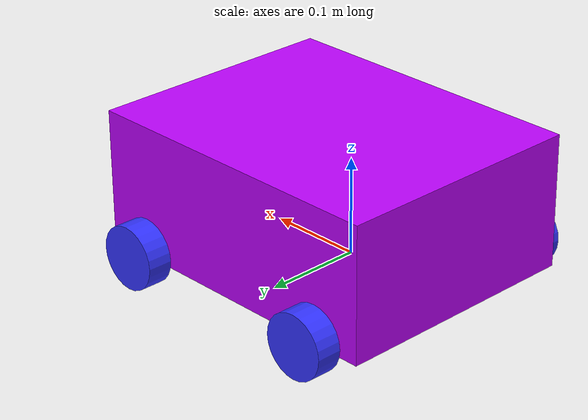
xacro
<?xml version="1.0"?>
<robot xmlns:xacro="http://www.ros.org/wiki/xacro" >

    <xacro:include filename="inertial_macros.xacro"/>

    <xacro:arg name="robot_name" default=""/>
    <xacro:property name="robot_name" value="$(arg robot_name)"/>

    <xacro:property name="chassis_length" value="0.335"/>
    <xacro:property name="chassis_width" value="0.265"/>
    <xacro:property name="chassis_height" value="0.138"/>
    <xacro:property name="chassis_mass" value="1.0"/>
    <xacro:property name="wheel_radius" value="0.033"/>
    <xacro:property name="wheel_thickness" value="0.026"/>
    <xacro:property name="wheel_mass" value="0.05"/>
    <xacro:property name="wheel_offset_x_front" value="0.14"/>
    <xacro:property name="wheel_offset_x_rear" value="-0.09"/>
    <xacro:property name="wheel_offset_y" value="0.1485"/>
    <xacro:property name="wheel_offset_z" value="0.01"/>

    <material name="white">
        <color rgba="1 1 1 1" />
    </material>

    <material name="violet">
        <color rgba="0.745 0.0117 0.9921 1"/>
    </material>

    <material name="blue">
        <color rgba="0.2 0.2 1 1"/>
    </material>

    <material name="black">
        <color rgba="0 0 0 1"/>
    </material>

    <material name="red">
        <color rgba="1 0 0 1"/>
    </material>

    <material name="green">
        <color rgba="0.18 0.8 0.25 1"/>
    </material>

    <material name="orange">
        <color rgba="1.0 0.55 0.0 1"/>
    </material>

    <!-- BASE LINK -->

    <link name="base_link"></link>

    <!-- BASE_FOOTPRINT LINK -->

    <joint name="base_footprint_joint" type="fixed">
        <parent link="base_link"/>
        <child link="base_footprint"/>
        <origin xyz="0 0 0" rpy="0 0 0"/>
    </joint>

    <link name="base_footprint"></link>

    <!-- CHASSIS LINK -->

    <joint name="chassis_joint" type="fixed">
        <parent link="base_link"/>
        <child link="chassis"/>
        <origin xyz="${-wheel_offset_x_front} 0 ${-wheel_offset_z}"/>
    </joint>

    <link name="chassis">
        <visual>
            <origin xyz="${chassis_length/2} 0 ${chassis_height/2}"/>
            <geometry>
                <box size="${chassis_length} ${chassis_width} ${chassis_height}"/>
            </geometry>
            <xacro:if value="${robot_name == 'robot2'}">
                <material name="green"/>
            </xacro:if>
            <xacro:unless value="${robot_name == 'robot2'}">
                <material name="violet"/>
            </xacro:unless>
        </visual>
        <collision>
            <origin xyz="${chassis_length/2} 0 ${chassis_height/2}"/>
            <geometry>
                <box size="${chassis_length} ${chassis_width} ${chassis_height}"/>
            </geometry>
        </collision>
        <xacro:inertial_box mass="0.5" x="${chassis_length}" y="${chassis_width}" z="${chassis_height}">
            <origin xyz="${chassis_length/2} 0 ${chassis_height/2}" rpy="0 0 0"/>
        </xacro:inertial_box>
    </link>

    <gazebo reference="chassis">
        <xacro:if value="${robot_name == 'robot2'}">
            <material>Gazebo/Green</material>
        </xacro:if>
        <xacro:unless value="${robot_name == 'robot2'}">
            <material>Gazebo/Violet</material>
        </xacro:unless>
    </gazebo>

    <!-- FRONT LEFT WHEEL LINK -->

    <joint name="left_wheel_joint" type="continuous">
        <parent link="base_link"/>
        <child link="left_wheel"/>
        <origin xyz="${wheel_offset_x_front} ${wheel_offset_y} 0" rpy="-${pi/2} 0 0" />
        <axis xyz="0 0 1"/>
    </joint>

    <link name="left_wheel">
        <visual>
            <geometry>
                <cylinder radius="${wheel_radius}" length="${wheel_thickness}"/>
            </geometry>
            <material name="blue"/>
        </visual>
        <collision>
            <geometry>
                <sphere radius="${wheel_radius}"/>
            </geometry>
        </collision>
        <xacro:inertial_cylinder mass="${wheel_mass}" length="${wheel_thickness}" radius="${wheel_radius}">
            <origin xyz="0 0 0" rpy="0 0 0"/>
        </xacro:inertial_cylinder>
    </link>

    <gazebo reference="left_wheel">
        <xacro:if value="${robot_name == 'robot2'}">
            <material>Gazebo/Orange</material>
        </xacro:if>
        <xacro:unless value="${robot_name == 'robot2'}">
            <material>Gazebo/Blue</material>
        </xacro:unless>
    </gazebo>

    <!-- FRONT RIGHT WHEEL LINK -->

    <joint name="right_wheel_joint" type="continuous">
        <parent link="base_link"/>
        <child link="right_wheel"/>
        <origin xyz="${wheel_offset_x_front} ${-wheel_offset_y} 0" rpy="${pi/2} 0 0" />
        <axis xyz="0 0 -1"/>
    </joint>

    <link name="right_wheel">
        <visual>
            <geometry>
                <cylinder radius="${wheel_radius}" length="${wheel_thickness}"/>
            </geometry>
            <material name="blue"/>
        </visual>
        <collision>
            <geometry>
                <sphere radius="${wheel_radius}"/>
            </geometry>
        </collision>
        <xacro:inertial_cylinder mass="${wheel_mass}" length="${wheel_thickness}" radius="${wheel_radius}">
            <origin xyz="0 0 0" rpy="0 0 0"/>
        </xacro:inertial_cylinder>
    </link>

    <gazebo reference="right_wheel">
        <xacro:if value="${robot_name == 'robot2'}">
            <material>Gazebo/Orange</material>
        </xacro:if>
        <xacro:unless value="${robot_name == 'robot2'}">
            <material>Gazebo/Blue</material>
        </xacro:unless>
    </gazebo>

    <!-- REAR LEFT WHEEL LINK -->

    <joint name="rear_left_wheel_joint" type="continuous">
        <parent link="base_link"/>
        <child link="rear_left_wheel"/>
        <origin xyz="${wheel_offset_x_rear} ${wheel_offset_y} 0" rpy="-${pi/2} 0 0" />
        <axis xyz="0 0 1"/>
    </joint>

    <link name="rear_left_wheel">
        <visual>
            <geometry>
                <cylinder radius="${wheel_radius}" length="${wheel_thickness}"/>
            </geometry>
            <material name="blue"/>
        </visual>
        <collision>
            <geometry>
                <sphere radius="${wheel_radius}"/>
            </geometry>
        </collision>
        <xacro:inertial_cylinder mass="${wheel_mass}" length="${wheel_thickness}" radius="${wheel_radius}">
            <origin xyz="0 0 0" rpy="0 0 0"/>
        </xacro:inertial_cylinder>
    </link>

    <gazebo reference="rear_left_wheel">
        <xacro:if value="${robot_name == 'robot2'}">
            <material>Gazebo/Orange</material>
        </xacro:if>
        <xacro:unless value="${robot_name == 'robot2'}">
            <material>Gazebo/Blue</material>
        </xacro:unless>
    </gazebo>

    <!-- REAR RIGHT WHEEL LINK -->

    <joint name="rear_right_wheel_joint" type="continuous">
        <parent link="base_link"/>
        <child link="rear_right_wheel"/>
        <origin xyz="${wheel_offset_x_rear} ${-wheel_offset_y} 0" rpy="${pi/2} 0 0" />
        <axis xyz="0 0 -1"/>
    </joint>

    <link name="rear_right_wheel">
        <visual>
            <geometry>
                <cylinder radius="${wheel_radius}" length="${wheel_thickness}"/>
            </geometry>
            <material name="blue"/>
        </visual>
        <collision>
            <geometry>
                <sphere radius="${wheel_radius}"/>
            </geometry>
        </collision>
        <xacro:inertial_cylinder mass="${wheel_mass}" length="${wheel_thickness}" radius="${wheel_radius}">
            <origin xyz="0 0 0" rpy="0 0 0"/>
        </xacro:inertial_cylinder>
    </link>

    <gazebo reference="rear_right_wheel">
        <xacro:if value="${robot_name == 'robot2'}">
            <material>Gazebo/Orange</material>
        </xacro:if>
        <xacro:unless value="${robot_name == 'robot2'}">
            <material>Gazebo/Blue</material>
        </xacro:unless>
    </gazebo>

</robot>
